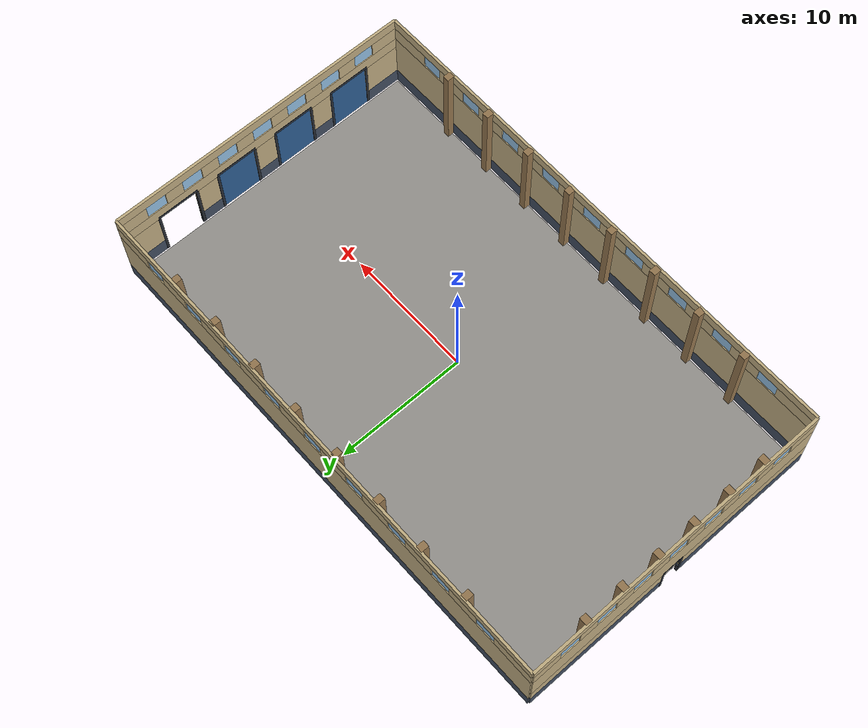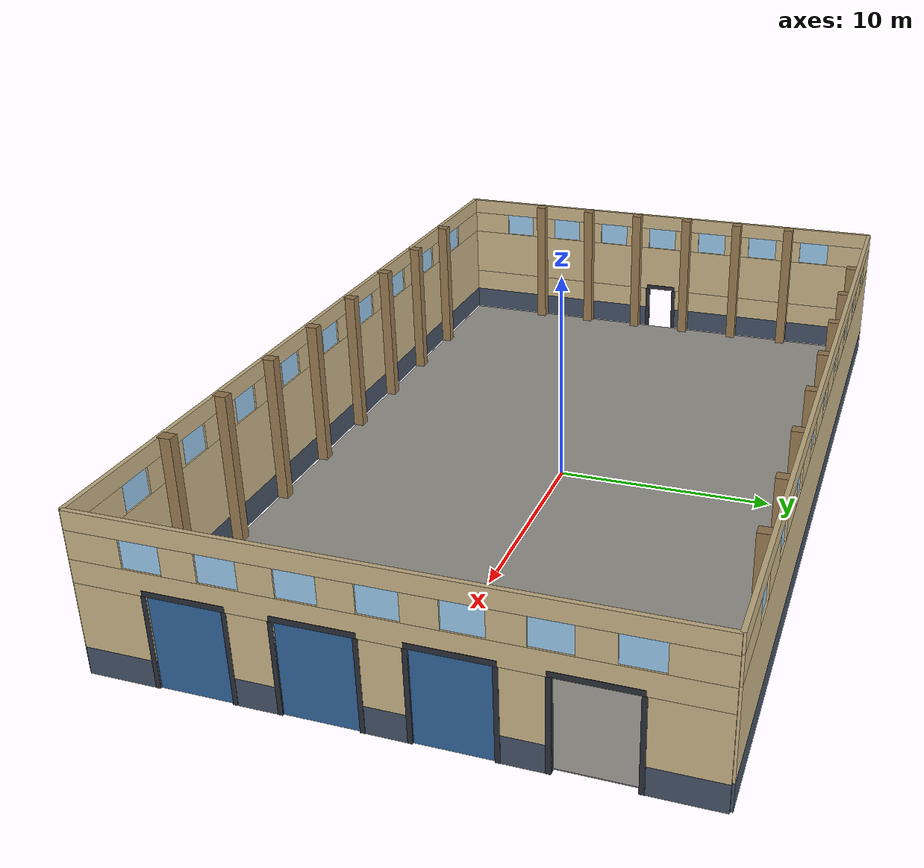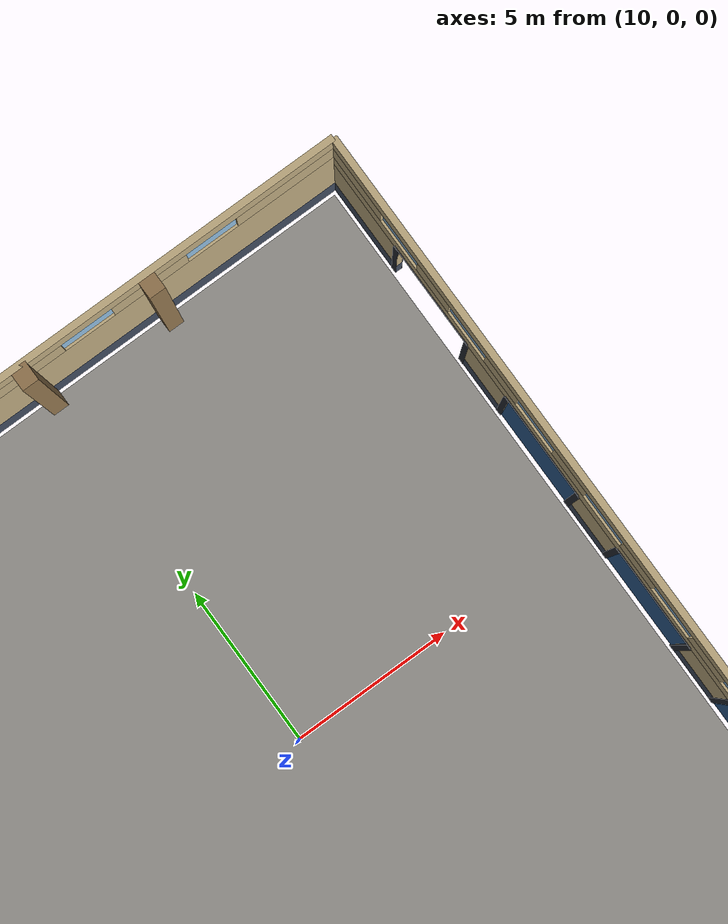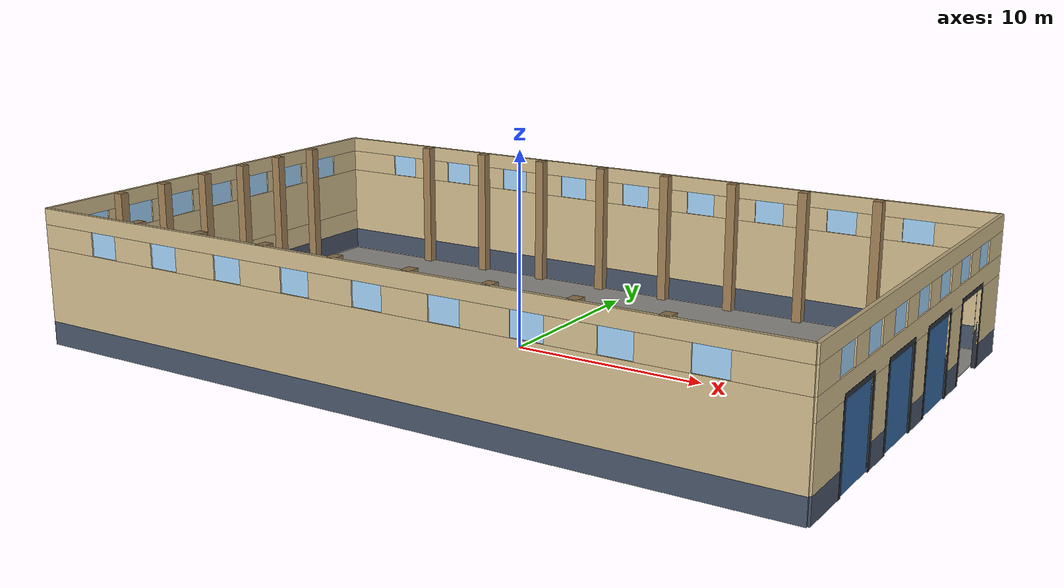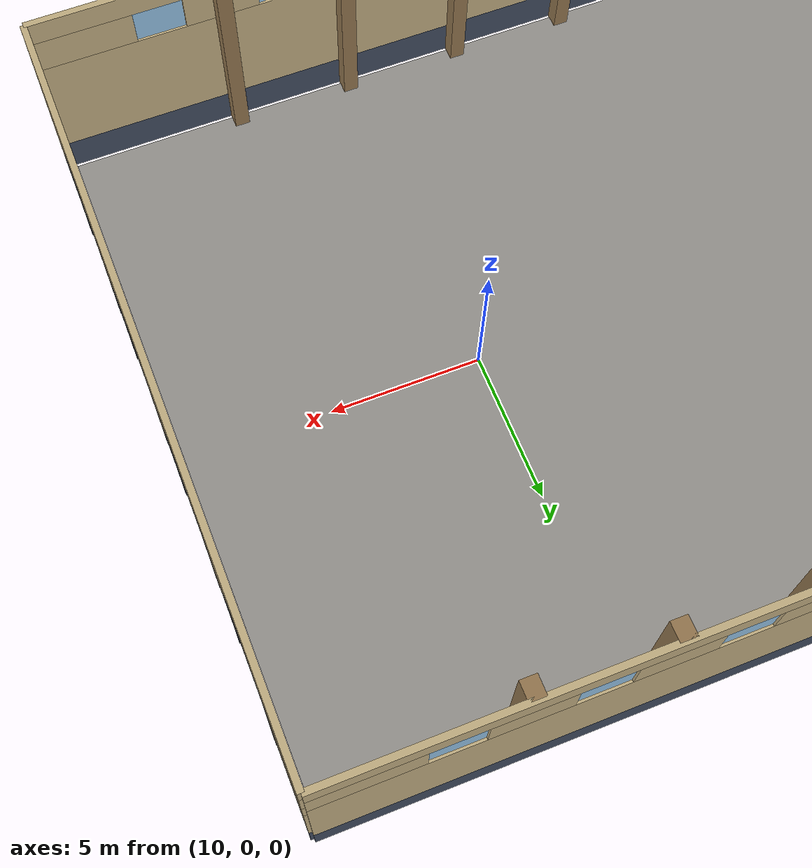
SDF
<sdf version="1.7">
 <world name="default">
  <model name="warehouse_shell">
   <static>1</static>
   <link name="wEbase0">
    <pose>20 -10.5 0.6 0 0 0</pose>
    <collision name="c"><geometry><box><size>0.2 3 1.2</size></box></geometry></collision>
    <visual name="v">
     <geometry><box><size>0.2 3 1.2</size></box></geometry>
     <material>
      <ambient>0.259 0.306 0.384 1</ambient>
      <diffuse>0.259 0.306 0.384 1</diffuse>
      <specular>0.1 0.1 0.1 1</specular>
     </material>
    </visual>
   </link>
   <link name="wEbase1">
    <pose>20 -5 0.6 0 0 0</pose>
    <collision name="c"><geometry><box><size>0.2 2 1.2</size></box></geometry></collision>
    <visual name="v">
     <geometry><box><size>0.2 2 1.2</size></box></geometry>
     <material>
      <ambient>0.259 0.306 0.384 1</ambient>
      <diffuse>0.259 0.306 0.384 1</diffuse>
      <specular>0.1 0.1 0.1 1</specular>
     </material>
    </visual>
   </link>
   <link name="wEbase2">
    <pose>20 0 0.6 0 0 0</pose>
    <collision name="c"><geometry><box><size>0.2 2 1.2</size></box></geometry></collision>
    <visual name="v">
     <geometry><box><size>0.2 2 1.2</size></box></geometry>
     <material>
      <ambient>0.259 0.306 0.384 1</ambient>
      <diffuse>0.259 0.306 0.384 1</diffuse>
      <specular>0.1 0.1 0.1 1</specular>
     </material>
    </visual>
   </link>
   <link name="wEbase3">
    <pose>20 5 0.6 0 0 0</pose>
    <collision name="c"><geometry><box><size>0.2 2 1.2</size></box></geometry></collision>
    <visual name="v">
     <geometry><box><size>0.2 2 1.2</size></box></geometry>
     <material>
      <ambient>0.259 0.306 0.384 1</ambient>
      <diffuse>0.259 0.306 0.384 1</diffuse>
      <specular>0.1 0.1 0.1 1</specular>
     </material>
    </visual>
   </link>
   <link name="wEbase4">
    <pose>20 10.5 0.6 0 0 0</pose>
    <collision name="c"><geometry><box><size>0.2 3 1.2</size></box></geometry></collision>
    <visual name="v">
     <geometry><box><size>0.2 3 1.2</size></box></geometry>
     <material>
      <ambient>0.259 0.306 0.384 1</ambient>
      <diffuse>0.259 0.306 0.384 1</diffuse>
      <specular>0.1 0.1 0.1 1</specular>
     </material>
    </visual>
   </link>
   <link name="wElo0">
    <pose>20 -10.5 2.6 0 0 0</pose>
    <collision name="c"><geometry><box><size>0.2 3 2.8</size></box></geometry></collision>
    <visual name="v">
     <geometry><box><size>0.2 3 2.8</size></box></geometry>
     <material>
      <ambient>0.769 0.690 0.518 1</ambient>
      <diffuse>0.769 0.690 0.518 1</diffuse>
      <specular>0.1 0.1 0.1 1</specular>
     </material>
    </visual>
   </link>
   <link name="wElo1">
    <pose>20 -5 2.6 0 0 0</pose>
    <collision name="c"><geometry><box><size>0.2 2 2.8</size></box></geometry></collision>
    <visual name="v">
     <geometry><box><size>0.2 2 2.8</size></box></geometry>
     <material>
      <ambient>0.769 0.690 0.518 1</ambient>
      <diffuse>0.769 0.690 0.518 1</diffuse>
      <specular>0.1 0.1 0.1 1</specular>
     </material>
    </visual>
   </link>
   <link name="wElo2">
    <pose>20 0 2.6 0 0 0</pose>
    <collision name="c"><geometry><box><size>0.2 2 2.8</size></box></geometry></collision>
    <visual name="v">
     <geometry><box><size>0.2 2 2.8</size></box></geometry>
     <material>
      <ambient>0.769 0.690 0.518 1</ambient>
      <diffuse>0.769 0.690 0.518 1</diffuse>
      <specular>0.1 0.1 0.1 1</specular>
     </material>
    </visual>
   </link>
   <link name="wElo3">
    <pose>20 5 2.6 0 0 0</pose>
    <collision name="c"><geometry><box><size>0.2 2 2.8</size></box></geometry></collision>
    <visual name="v">
     <geometry><box><size>0.2 2 2.8</size></box></geometry>
     <material>
      <ambient>0.769 0.690 0.518 1</ambient>
      <diffuse>0.769 0.690 0.518 1</diffuse>
      <specular>0.1 0.1 0.1 1</specular>
     </material>
    </visual>
   </link>
   <link name="wElo4">
    <pose>20 10.5 2.6 0 0 0</pose>
    <collision name="c"><geometry><box><size>0.2 3 2.8</size></box></geometry></collision>
    <visual name="v">
     <geometry><box><size>0.2 3 2.8</size></box></geometry>
     <material>
      <ambient>0.769 0.690 0.518 1</ambient>
      <diffuse>0.769 0.690 0.518 1</diffuse>
      <specular>0.1 0.1 0.1 1</specular>
     </material>
    </visual>
   </link>
   <link name="wEmid0">
    <pose>20 0 4.5 0 0 0</pose>
    <collision name="c"><geometry><box><size>0.2 24 1</size></box></geometry></collision>
    <visual name="v">
     <geometry><box><size>0.2 24 1</size></box></geometry>
     <material>
      <ambient>0.769 0.690 0.518 1</ambient>
      <diffuse>0.769 0.690 0.518 1</diffuse>
      <specular>0.1 0.1 0.1 1</specular>
     </material>
    </visual>
   </link>
   <link name="wEmul0">
    <pose>20 -10.9 5.6 0 0 0</pose>
    <collision name="c"><geometry><box><size>0.2 2.2 1.2</size></box></geometry></collision>
    <visual name="v">
     <geometry><box><size>0.2 2.2 1.2</size></box></geometry>
     <material>
      <ambient>0.769 0.690 0.518 1</ambient>
      <diffuse>0.769 0.690 0.518 1</diffuse>
      <specular>0.1 0.1 0.1 1</specular>
     </material>
    </visual>
   </link>
   <link name="wEmul1">
    <pose>20 -7.5 5.6 0 0 0</pose>
    <collision name="c"><geometry><box><size>0.2 1.4 1.2</size></box></geometry></collision>
    <visual name="v">
     <geometry><box><size>0.2 1.4 1.2</size></box></geometry>
     <material>
      <ambient>0.769 0.690 0.518 1</ambient>
      <diffuse>0.769 0.690 0.518 1</diffuse>
      <specular>0.1 0.1 0.1 1</specular>
     </material>
    </visual>
   </link>
   <link name="wEmul2">
    <pose>20 -4.5 5.6 0 0 0</pose>
    <collision name="c"><geometry><box><size>0.2 1.4 1.2</size></box></geometry></collision>
    <visual name="v">
     <geometry><box><size>0.2 1.4 1.2</size></box></geometry>
     <material>
      <ambient>0.769 0.690 0.518 1</ambient>
      <diffuse>0.769 0.690 0.518 1</diffuse>
      <specular>0.1 0.1 0.1 1</specular>
     </material>
    </visual>
   </link>
   <link name="wEmul3">
    <pose>20 -1.5 5.6 0 0 0</pose>
    <collision name="c"><geometry><box><size>0.2 1.4 1.2</size></box></geometry></collision>
    <visual name="v">
     <geometry><box><size>0.2 1.4 1.2</size></box></geometry>
     <material>
      <ambient>0.769 0.690 0.518 1</ambient>
      <diffuse>0.769 0.690 0.518 1</diffuse>
      <specular>0.1 0.1 0.1 1</specular>
     </material>
    </visual>
   </link>
   <link name="wEmul4">
    <pose>20 1.5 5.6 0 0 0</pose>
    <collision name="c"><geometry><box><size>0.2 1.4 1.2</size></box></geometry></collision>
    <visual name="v">
     <geometry><box><size>0.2 1.4 1.2</size></box></geometry>
     <material>
      <ambient>0.769 0.690 0.518 1</ambient>
      <diffuse>0.769 0.690 0.518 1</diffuse>
      <specular>0.1 0.1 0.1 1</specular>
     </material>
    </visual>
   </link>
   <link name="wEmul5">
    <pose>20 4.5 5.6 0 0 0</pose>
    <collision name="c"><geometry><box><size>0.2 1.4 1.2</size></box></geometry></collision>
    <visual name="v">
     <geometry><box><size>0.2 1.4 1.2</size></box></geometry>
     <material>
      <ambient>0.769 0.690 0.518 1</ambient>
      <diffuse>0.769 0.690 0.518 1</diffuse>
      <specular>0.1 0.1 0.1 1</specular>
     </material>
    </visual>
   </link>
   <link name="wEmul6">
    <pose>20 7.5 5.6 0 0 0</pose>
    <collision name="c"><geometry><box><size>0.2 1.4 1.2</size></box></geometry></collision>
    <visual name="v">
     <geometry><box><size>0.2 1.4 1.2</size></box></geometry>
     <material>
      <ambient>0.769 0.690 0.518 1</ambient>
      <diffuse>0.769 0.690 0.518 1</diffuse>
      <specular>0.1 0.1 0.1 1</specular>
     </material>
    </visual>
   </link>
   <link name="wEmul7">
    <pose>20 10.9 5.6 0 0 0</pose>
    <collision name="c"><geometry><box><size>0.2 2.2 1.2</size></box></geometry></collision>
    <visual name="v">
     <geometry><box><size>0.2 2.2 1.2</size></box></geometry>
     <material>
      <ambient>0.769 0.690 0.518 1</ambient>
      <diffuse>0.769 0.690 0.518 1</diffuse>
      <specular>0.1 0.1 0.1 1</specular>
     </material>
    </visual>
   </link>
   <link name="wEtop0">
    <pose>20 0 6.6 0 0 0</pose>
    <collision name="c"><geometry><box><size>0.2 24 0.8</size></box></geometry></collision>
    <visual name="v">
     <geometry><box><size>0.2 24 0.8</size></box></geometry>
     <material>
      <ambient>0.769 0.690 0.518 1</ambient>
      <diffuse>0.769 0.690 0.518 1</diffuse>
      <specular>0.1 0.1 0.1 1</specular>
     </material>
    </visual>
   </link>
   <link name="wEg-9">
    <pose>20 -9 5.6 0 0 0</pose>
    <collision name="c"><geometry><box><size>0.05 1.6 1.2</size></box></geometry></collision>
    <visual name="v">
     <geometry><box><size>0.05 1.6 1.2</size></box></geometry>
     <material>
      <ambient>0.588 0.769 0.910 1</ambient>
      <diffuse>0.588 0.769 0.910 1</diffuse>
      <specular>0.1 0.1 0.1 1</specular>
     </material>
    </visual>
   </link>
   <link name="wEg-6">
    <pose>20 -6 5.6 0 0 0</pose>
    <collision name="c"><geometry><box><size>0.05 1.6 1.2</size></box></geometry></collision>
    <visual name="v">
     <geometry><box><size>0.05 1.6 1.2</size></box></geometry>
     <material>
      <ambient>0.588 0.769 0.910 1</ambient>
      <diffuse>0.588 0.769 0.910 1</diffuse>
      <specular>0.1 0.1 0.1 1</specular>
     </material>
    </visual>
   </link>
   <link name="wEg-3">
    <pose>20 -3 5.6 0 0 0</pose>
    <collision name="c"><geometry><box><size>0.05 1.6 1.2</size></box></geometry></collision>
    <visual name="v">
     <geometry><box><size>0.05 1.6 1.2</size></box></geometry>
     <material>
      <ambient>0.588 0.769 0.910 1</ambient>
      <diffuse>0.588 0.769 0.910 1</diffuse>
      <specular>0.1 0.1 0.1 1</specular>
     </material>
    </visual>
   </link>
   <link name="wEg0">
    <pose>20 0 5.6 0 0 0</pose>
    <collision name="c"><geometry><box><size>0.05 1.6 1.2</size></box></geometry></collision>
    <visual name="v">
     <geometry><box><size>0.05 1.6 1.2</size></box></geometry>
     <material>
      <ambient>0.588 0.769 0.910 1</ambient>
      <diffuse>0.588 0.769 0.910 1</diffuse>
      <specular>0.1 0.1 0.1 1</specular>
     </material>
    </visual>
   </link>
   <link name="wEg3">
    <pose>20 3 5.6 0 0 0</pose>
    <collision name="c"><geometry><box><size>0.05 1.6 1.2</size></box></geometry></collision>
    <visual name="v">
     <geometry><box><size>0.05 1.6 1.2</size></box></geometry>
     <material>
      <ambient>0.588 0.769 0.910 1</ambient>
      <diffuse>0.588 0.769 0.910 1</diffuse>
      <specular>0.1 0.1 0.1 1</specular>
     </material>
    </visual>
   </link>
   <link name="wEg6">
    <pose>20 6 5.6 0 0 0</pose>
    <collision name="c"><geometry><box><size>0.05 1.6 1.2</size></box></geometry></collision>
    <visual name="v">
     <geometry><box><size>0.05 1.6 1.2</size></box></geometry>
     <material>
      <ambient>0.588 0.769 0.910 1</ambient>
      <diffuse>0.588 0.769 0.910 1</diffuse>
      <specular>0.1 0.1 0.1 1</specular>
     </material>
    </visual>
   </link>
   <link name="wEg9">
    <pose>20 9 5.6 0 0 0</pose>
    <collision name="c"><geometry><box><size>0.05 1.6 1.2</size></box></geometry></collision>
    <visual name="v">
     <geometry><box><size>0.05 1.6 1.2</size></box></geometry>
     <material>
      <ambient>0.588 0.769 0.910 1</ambient>
      <diffuse>0.588 0.769 0.910 1</diffuse>
      <specular>0.1 0.1 0.1 1</specular>
     </material>
    </visual>
   </link>
   <link name="dfE-8lt">
    <pose>20 -7.5 4.12 0 0 0</pose>
    <collision name="c"><geometry><box><size>0.22 3.3 0.24</size></box></geometry></collision>
    <visual name="v">
     <geometry><box><size>0.22 3.3 0.24</size></box></geometry>
     <material>
      <ambient>0.157 0.173 0.204 1</ambient>
      <diffuse>0.157 0.173 0.204 1</diffuse>
      <specular>0.1 0.1 0.1 1</specular>
     </material>
    </visual>
   </link>
   <link name="dfE-8j-1">
    <pose>20 -9.1 2 0 0 0</pose>
    <collision name="c"><geometry><box><size>0.22 0.2 4</size></box></geometry></collision>
    <visual name="v">
     <geometry><box><size>0.22 0.2 4</size></box></geometry>
     <material>
      <ambient>0.157 0.173 0.204 1</ambient>
      <diffuse>0.157 0.173 0.204 1</diffuse>
      <specular>0.1 0.1 0.1 1</specular>
     </material>
    </visual>
   </link>
   <link name="dfE-8j1">
    <pose>20 -5.9 2 0 0 0</pose>
    <collision name="c"><geometry><box><size>0.22 0.2 4</size></box></geometry></collision>
    <visual name="v">
     <geometry><box><size>0.22 0.2 4</size></box></geometry>
     <material>
      <ambient>0.157 0.173 0.204 1</ambient>
      <diffuse>0.157 0.173 0.204 1</diffuse>
      <specular>0.1 0.1 0.1 1</specular>
     </material>
    </visual>
   </link>
   <link name="doorE-8">
    <pose>19.98 -7.5 2 0 0 0</pose>
    <collision name="c"><geometry><box><size>0.1 3 4</size></box></geometry></collision>
    <visual name="v">
     <geometry><box><size>0.1 3 4</size></box></geometry>
     <material>
      <ambient>0.180 0.376 0.588 1</ambient>
      <diffuse>0.180 0.376 0.588 1</diffuse>
      <specular>0.1 0.1 0.1 1</specular>
     </material>
    </visual>
   </link>
   <link name="dfE-2lt">
    <pose>20 -2.5 4.12 0 0 0</pose>
    <collision name="c"><geometry><box><size>0.22 3.3 0.24</size></box></geometry></collision>
    <visual name="v">
     <geometry><box><size>0.22 3.3 0.24</size></box></geometry>
     <material>
      <ambient>0.157 0.173 0.204 1</ambient>
      <diffuse>0.157 0.173 0.204 1</diffuse>
      <specular>0.1 0.1 0.1 1</specular>
     </material>
    </visual>
   </link>
   <link name="dfE-2j-1">
    <pose>20 -4.1 2 0 0 0</pose>
    <collision name="c"><geometry><box><size>0.22 0.2 4</size></box></geometry></collision>
    <visual name="v">
     <geometry><box><size>0.22 0.2 4</size></box></geometry>
     <material>
      <ambient>0.157 0.173 0.204 1</ambient>
      <diffuse>0.157 0.173 0.204 1</diffuse>
      <specular>0.1 0.1 0.1 1</specular>
     </material>
    </visual>
   </link>
   <link name="dfE-2j1">
    <pose>20 -0.9 2 0 0 0</pose>
    <collision name="c"><geometry><box><size>0.22 0.2 4</size></box></geometry></collision>
    <visual name="v">
     <geometry><box><size>0.22 0.2 4</size></box></geometry>
     <material>
      <ambient>0.157 0.173 0.204 1</ambient>
      <diffuse>0.157 0.173 0.204 1</diffuse>
      <specular>0.1 0.1 0.1 1</specular>
     </material>
    </visual>
   </link>
   <link name="doorE-2">
    <pose>19.98 -2.5 2 0 0 0</pose>
    <collision name="c"><geometry><box><size>0.1 3 4</size></box></geometry></collision>
    <visual name="v">
     <geometry><box><size>0.1 3 4</size></box></geometry>
     <material>
      <ambient>0.180 0.376 0.588 1</ambient>
      <diffuse>0.180 0.376 0.588 1</diffuse>
      <specular>0.1 0.1 0.1 1</specular>
     </material>
    </visual>
   </link>
   <link name="dfE2lt">
    <pose>20 2.5 4.12 0 0 0</pose>
    <collision name="c"><geometry><box><size>0.22 3.3 0.24</size></box></geometry></collision>
    <visual name="v">
     <geometry><box><size>0.22 3.3 0.24</size></box></geometry>
     <material>
      <ambient>0.157 0.173 0.204 1</ambient>
      <diffuse>0.157 0.173 0.204 1</diffuse>
      <specular>0.1 0.1 0.1 1</specular>
     </material>
    </visual>
   </link>
   <link name="dfE2j-1">
    <pose>20 0.9 2 0 0 0</pose>
    <collision name="c"><geometry><box><size>0.22 0.2 4</size></box></geometry></collision>
    <visual name="v">
     <geometry><box><size>0.22 0.2 4</size></box></geometry>
     <material>
      <ambient>0.157 0.173 0.204 1</ambient>
      <diffuse>0.157 0.173 0.204 1</diffuse>
      <specular>0.1 0.1 0.1 1</specular>
     </material>
    </visual>
   </link>
   <link name="dfE2j1">
    <pose>20 4.1 2 0 0 0</pose>
    <collision name="c"><geometry><box><size>0.22 0.2 4</size></box></geometry></collision>
    <visual name="v">
     <geometry><box><size>0.22 0.2 4</size></box></geometry>
     <material>
      <ambient>0.157 0.173 0.204 1</ambient>
      <diffuse>0.157 0.173 0.204 1</diffuse>
      <specular>0.1 0.1 0.1 1</specular>
     </material>
    </visual>
   </link>
   <link name="doorE2">
    <pose>19.98 2.5 2 0 0 0</pose>
    <collision name="c"><geometry><box><size>0.1 3 4</size></box></geometry></collision>
    <visual name="v">
     <geometry><box><size>0.1 3 4</size></box></geometry>
     <material>
      <ambient>0.180 0.376 0.588 1</ambient>
      <diffuse>0.180 0.376 0.588 1</diffuse>
      <specular>0.1 0.1 0.1 1</specular>
     </material>
    </visual>
   </link>
   <link name="dfE8lt">
    <pose>20 7.5 4.12 0 0 0</pose>
    <collision name="c"><geometry><box><size>0.22 3.3 0.24</size></box></geometry></collision>
    <visual name="v">
     <geometry><box><size>0.22 3.3 0.24</size></box></geometry>
     <material>
      <ambient>0.157 0.173 0.204 1</ambient>
      <diffuse>0.157 0.173 0.204 1</diffuse>
      <specular>0.1 0.1 0.1 1</specular>
     </material>
    </visual>
   </link>
   <link name="dfE8j-1">
    <pose>20 5.9 2 0 0 0</pose>
    <collision name="c"><geometry><box><size>0.22 0.2 4</size></box></geometry></collision>
    <visual name="v">
     <geometry><box><size>0.22 0.2 4</size></box></geometry>
     <material>
      <ambient>0.157 0.173 0.204 1</ambient>
      <diffuse>0.157 0.173 0.204 1</diffuse>
      <specular>0.1 0.1 0.1 1</specular>
     </material>
    </visual>
   </link>
   <link name="dfE8j1">
    <pose>20 9.1 2 0 0 0</pose>
    <collision name="c"><geometry><box><size>0.22 0.2 4</size></box></geometry></collision>
    <visual name="v">
     <geometry><box><size>0.22 0.2 4</size></box></geometry>
     <material>
      <ambient>0.157 0.173 0.204 1</ambient>
      <diffuse>0.157 0.173 0.204 1</diffuse>
      <specular>0.1 0.1 0.1 1</specular>
     </material>
    </visual>
   </link>
   <link name="wWbase0">
    <pose>-20 -6.35 0.6 0 0 0</pose>
    <collision name="c"><geometry><box><size>0.2 11.3 1.2</size></box></geometry></collision>
    <visual name="v">
     <geometry><box><size>0.2 11.3 1.2</size></box></geometry>
     <material>
      <ambient>0.259 0.306 0.384 1</ambient>
      <diffuse>0.259 0.306 0.384 1</diffuse>
      <specular>0.1 0.1 0.1 1</specular>
     </material>
    </visual>
   </link>
   <link name="wWbase1">
    <pose>-20 6.35 0.6 0 0 0</pose>
    <collision name="c"><geometry><box><size>0.2 11.3 1.2</size></box></geometry></collision>
    <visual name="v">
     <geometry><box><size>0.2 11.3 1.2</size></box></geometry>
     <material>
      <ambient>0.259 0.306 0.384 1</ambient>
      <diffuse>0.259 0.306 0.384 1</diffuse>
      <specular>0.1 0.1 0.1 1</specular>
     </material>
    </visual>
   </link>
   <link name="wWlo0">
    <pose>-20 -6.35 1.8 0 0 0</pose>
    <collision name="c"><geometry><box><size>0.2 11.3 1.2</size></box></geometry></collision>
    <visual name="v">
     <geometry><box><size>0.2 11.3 1.2</size></box></geometry>
     <material>
      <ambient>0.769 0.690 0.518 1</ambient>
      <diffuse>0.769 0.690 0.518 1</diffuse>
      <specular>0.1 0.1 0.1 1</specular>
     </material>
    </visual>
   </link>
   <link name="wWlo1">
    <pose>-20 6.35 1.8 0 0 0</pose>
    <collision name="c"><geometry><box><size>0.2 11.3 1.2</size></box></geometry></collision>
    <visual name="v">
     <geometry><box><size>0.2 11.3 1.2</size></box></geometry>
     <material>
      <ambient>0.769 0.690 0.518 1</ambient>
      <diffuse>0.769 0.690 0.518 1</diffuse>
      <specular>0.1 0.1 0.1 1</specular>
     </material>
    </visual>
   </link>
   <link name="wWmid0">
    <pose>-20 0 3.7 0 0 0</pose>
    <collision name="c"><geometry><box><size>0.2 24 2.6</size></box></geometry></collision>
    <visual name="v">
     <geometry><box><size>0.2 24 2.6</size></box></geometry>
     <material>
      <ambient>0.769 0.690 0.518 1</ambient>
      <diffuse>0.769 0.690 0.518 1</diffuse>
      <specular>0.1 0.1 0.1 1</specular>
     </material>
    </visual>
   </link>
   <link name="wWmul0">
    <pose>-20 -10.9 5.6 0 0 0</pose>
    <collision name="c"><geometry><box><size>0.2 2.2 1.2</size></box></geometry></collision>
    <visual name="v">
     <geometry><box><size>0.2 2.2 1.2</size></box></geometry>
     <material>
      <ambient>0.769 0.690 0.518 1</ambient>
      <diffuse>0.769 0.690 0.518 1</diffuse>
      <specular>0.1 0.1 0.1 1</specular>
     </material>
    </visual>
   </link>
   <link name="wWmul1">
    <pose>-20 -7.5 5.6 0 0 0</pose>
    <collision name="c"><geometry><box><size>0.2 1.4 1.2</size></box></geometry></collision>
    <visual name="v">
     <geometry><box><size>0.2 1.4 1.2</size></box></geometry>
     <material>
      <ambient>0.769 0.690 0.518 1</ambient>
      <diffuse>0.769 0.690 0.518 1</diffuse>
      <specular>0.1 0.1 0.1 1</specular>
     </material>
    </visual>
   </link>
   <link name="wWmul2">
    <pose>-20 -4.5 5.6 0 0 0</pose>
    <collision name="c"><geometry><box><size>0.2 1.4 1.2</size></box></geometry></collision>
    <visual name="v">
     <geometry><box><size>0.2 1.4 1.2</size></box></geometry>
     <material>
      <ambient>0.769 0.690 0.518 1</ambient>
      <diffuse>0.769 0.690 0.518 1</diffuse>
      <specular>0.1 0.1 0.1 1</specular>
     </material>
    </visual>
   </link>
   <link name="wWmul3">
    <pose>-20 -1.5 5.6 0 0 0</pose>
    <collision name="c"><geometry><box><size>0.2 1.4 1.2</size></box></geometry></collision>
    <visual name="v">
     <geometry><box><size>0.2 1.4 1.2</size></box></geometry>
     <material>
      <ambient>0.769 0.690 0.518 1</ambient>
      <diffuse>0.769 0.690 0.518 1</diffuse>
      <specular>0.1 0.1 0.1 1</specular>
     </material>
    </visual>
   </link>
   <link name="wWmul4">
    <pose>-20 1.5 5.6 0 0 0</pose>
    <collision name="c"><geometry><box><size>0.2 1.4 1.2</size></box></geometry></collision>
    <visual name="v">
     <geometry><box><size>0.2 1.4 1.2</size></box></geometry>
     <material>
      <ambient>0.769 0.690 0.518 1</ambient>
      <diffuse>0.769 0.690 0.518 1</diffuse>
      <specular>0.1 0.1 0.1 1</specular>
     </material>
    </visual>
   </link>
   <link name="wWmul5">
    <pose>-20 4.5 5.6 0 0 0</pose>
    <collision name="c"><geometry><box><size>0.2 1.4 1.2</size></box></geometry></collision>
    <visual name="v">
     <geometry><box><size>0.2 1.4 1.2</size></box></geometry>
     <material>
      <ambient>0.769 0.690 0.518 1</ambient>
      <diffuse>0.769 0.690 0.518 1</diffuse>
      <specular>0.1 0.1 0.1 1</specular>
     </material>
    </visual>
   </link>
   <link name="wWmul6">
    <pose>-20 7.5 5.6 0 0 0</pose>
    <collision name="c"><geometry><box><size>0.2 1.4 1.2</size></box></geometry></collision>
    <visual name="v">
     <geometry><box><size>0.2 1.4 1.2</size></box></geometry>
     <material>
      <ambient>0.769 0.690 0.518 1</ambient>
      <diffuse>0.769 0.690 0.518 1</diffuse>
      <specular>0.1 0.1 0.1 1</specular>
     </material>
    </visual>
   </link>
   <link name="wWmul7">
    <pose>-20 10.9 5.6 0 0 0</pose>
    <collision name="c"><geometry><box><size>0.2 2.2 1.2</size></box></geometry></collision>
    <visual name="v">
     <geometry><box><size>0.2 2.2 1.2</size></box></geometry>
     <material>
      <ambient>0.769 0.690 0.518 1</ambient>
      <diffuse>0.769 0.690 0.518 1</diffuse>
      <specular>0.1 0.1 0.1 1</specular>
     </material>
    </visual>
   </link>
   <link name="wWtop0">
    <pose>-20 0 6.6 0 0 0</pose>
    <collision name="c"><geometry><box><size>0.2 24 0.8</size></box></geometry></collision>
    <visual name="v">
     <geometry><box><size>0.2 24 0.8</size></box></geometry>
     <material>
      <ambient>0.769 0.690 0.518 1</ambient>
      <diffuse>0.769 0.690 0.518 1</diffuse>
      <specular>0.1 0.1 0.1 1</specular>
     </material>
    </visual>
   </link>
   <link name="wWg-9">
    <pose>-20 -9 5.6 0 0 0</pose>
    <collision name="c"><geometry><box><size>0.05 1.6 1.2</size></box></geometry></collision>
    <visual name="v">
     <geometry><box><size>0.05 1.6 1.2</size></box></geometry>
     <material>
      <ambient>0.588 0.769 0.910 1</ambient>
      <diffuse>0.588 0.769 0.910 1</diffuse>
      <specular>0.1 0.1 0.1 1</specular>
     </material>
    </visual>
   </link>
   <link name="wWg-6">
    <pose>-20 -6 5.6 0 0 0</pose>
    <collision name="c"><geometry><box><size>0.05 1.6 1.2</size></box></geometry></collision>
    <visual name="v">
     <geometry><box><size>0.05 1.6 1.2</size></box></geometry>
     <material>
      <ambient>0.588 0.769 0.910 1</ambient>
      <diffuse>0.588 0.769 0.910 1</diffuse>
      <specular>0.1 0.1 0.1 1</specular>
     </material>
    </visual>
   </link>
   <link name="wWg-3">
    <pose>-20 -3 5.6 0 0 0</pose>
    <collision name="c"><geometry><box><size>0.05 1.6 1.2</size></box></geometry></collision>
    <visual name="v">
     <geometry><box><size>0.05 1.6 1.2</size></box></geometry>
     <material>
      <ambient>0.588 0.769 0.910 1</ambient>
      <diffuse>0.588 0.769 0.910 1</diffuse>
      <specular>0.1 0.1 0.1 1</specular>
     </material>
    </visual>
   </link>
   <link name="wWg0">
    <pose>-20 0 5.6 0 0 0</pose>
    <collision name="c"><geometry><box><size>0.05 1.6 1.2</size></box></geometry></collision>
    <visual name="v">
     <geometry><box><size>0.05 1.6 1.2</size></box></geometry>
     <material>
      <ambient>0.588 0.769 0.910 1</ambient>
      <diffuse>0.588 0.769 0.910 1</diffuse>
      <specular>0.1 0.1 0.1 1</specular>
     </material>
    </visual>
   </link>
   <link name="wWg3">
    <pose>-20 3 5.6 0 0 0</pose>
    <collision name="c"><geometry><box><size>0.05 1.6 1.2</size></box></geometry></collision>
    <visual name="v">
     <geometry><box><size>0.05 1.6 1.2</size></box></geometry>
     <material>
      <ambient>0.588 0.769 0.910 1</ambient>
      <diffuse>0.588 0.769 0.910 1</diffuse>
      <specular>0.1 0.1 0.1 1</specular>
     </material>
    </visual>
   </link>
   <link name="wWg6">
    <pose>-20 6 5.6 0 0 0</pose>
    <collision name="c"><geometry><box><size>0.05 1.6 1.2</size></box></geometry></collision>
    <visual name="v">
     <geometry><box><size>0.05 1.6 1.2</size></box></geometry>
     <material>
      <ambient>0.588 0.769 0.910 1</ambient>
      <diffuse>0.588 0.769 0.910 1</diffuse>
      <specular>0.1 0.1 0.1 1</specular>
     </material>
    </visual>
   </link>
   <link name="wWg9">
    <pose>-20 9 5.6 0 0 0</pose>
    <collision name="c"><geometry><box><size>0.05 1.6 1.2</size></box></geometry></collision>
    <visual name="v">
     <geometry><box><size>0.05 1.6 1.2</size></box></geometry>
     <material>
      <ambient>0.588 0.769 0.910 1</ambient>
      <diffuse>0.588 0.769 0.910 1</diffuse>
      <specular>0.1 0.1 0.1 1</specular>
     </material>
    </visual>
   </link>
   <link name="dfWlt">
    <pose>-20 0 2.52 0 0 0</pose>
    <collision name="c"><geometry><box><size>0.22 1.7 0.24</size></box></geometry></collision>
    <visual name="v">
     <geometry><box><size>0.22 1.7 0.24</size></box></geometry>
     <material>
      <ambient>0.157 0.173 0.204 1</ambient>
      <diffuse>0.157 0.173 0.204 1</diffuse>
      <specular>0.1 0.1 0.1 1</specular>
     </material>
    </visual>
   </link>
   <link name="dfWj-1">
    <pose>-20 -0.8 1.2 0 0 0</pose>
    <collision name="c"><geometry><box><size>0.22 0.2 2.4</size></box></geometry></collision>
    <visual name="v">
     <geometry><box><size>0.22 0.2 2.4</size></box></geometry>
     <material>
      <ambient>0.157 0.173 0.204 1</ambient>
      <diffuse>0.157 0.173 0.204 1</diffuse>
      <specular>0.1 0.1 0.1 1</specular>
     </material>
    </visual>
   </link>
   <link name="dfWj1">
    <pose>-20 0.8 1.2 0 0 0</pose>
    <collision name="c"><geometry><box><size>0.22 0.2 2.4</size></box></geometry></collision>
    <visual name="v">
     <geometry><box><size>0.22 0.2 2.4</size></box></geometry>
     <material>
      <ambient>0.157 0.173 0.204 1</ambient>
      <diffuse>0.157 0.173 0.204 1</diffuse>
      <specular>0.1 0.1 0.1 1</specular>
     </material>
    </visual>
   </link>
   <link name="wWpil-75">
    <pose>-19.7 -7.5 3.5 0 0 0</pose>
    <collision name="c"><geometry><box><size>0.6 0.5 7</size></box></geometry></collision>
    <visual name="v">
     <geometry><box><size>0.6 0.5 7</size></box></geometry>
     <material>
      <ambient>0.588 0.471 0.314 1</ambient>
      <diffuse>0.588 0.471 0.314 1</diffuse>
      <specular>0.1 0.1 0.1 1</specular>
     </material>
    </visual>
   </link>
   <link name="wWpil-45">
    <pose>-19.7 -4.5 3.5 0 0 0</pose>
    <collision name="c"><geometry><box><size>0.6 0.5 7</size></box></geometry></collision>
    <visual name="v">
     <geometry><box><size>0.6 0.5 7</size></box></geometry>
     <material>
      <ambient>0.588 0.471 0.314 1</ambient>
      <diffuse>0.588 0.471 0.314 1</diffuse>
      <specular>0.1 0.1 0.1 1</specular>
     </material>
    </visual>
   </link>
   <link name="wWpil-15">
    <pose>-19.7 -1.5 3.5 0 0 0</pose>
    <collision name="c"><geometry><box><size>0.6 0.5 7</size></box></geometry></collision>
    <visual name="v">
     <geometry><box><size>0.6 0.5 7</size></box></geometry>
     <material>
      <ambient>0.588 0.471 0.314 1</ambient>
      <diffuse>0.588 0.471 0.314 1</diffuse>
      <specular>0.1 0.1 0.1 1</specular>
     </material>
    </visual>
   </link>
   <link name="wWpil15">
    <pose>-19.7 1.5 3.5 0 0 0</pose>
    <collision name="c"><geometry><box><size>0.6 0.5 7</size></box></geometry></collision>
    <visual name="v">
     <geometry><box><size>0.6 0.5 7</size></box></geometry>
     <material>
      <ambient>0.588 0.471 0.314 1</ambient>
      <diffuse>0.588 0.471 0.314 1</diffuse>
      <specular>0.1 0.1 0.1 1</specular>
     </material>
    </visual>
   </link>
   <link name="wWpil45">
    <pose>-19.7 4.5 3.5 0 0 0</pose>
    <collision name="c"><geometry><box><size>0.6 0.5 7</size></box></geometry></collision>
    <visual name="v">
     <geometry><box><size>0.6 0.5 7</size></box></geometry>
     <material>
      <ambient>0.588 0.471 0.314 1</ambient>
      <diffuse>0.588 0.471 0.314 1</diffuse>
      <specular>0.1 0.1 0.1 1</specular>
     </material>
    </visual>
   </link>
   <link name="wWpil75">
    <pose>-19.7 7.5 3.5 0 0 0</pose>
    <collision name="c"><geometry><box><size>0.6 0.5 7</size></box></geometry></collision>
    <visual name="v">
     <geometry><box><size>0.6 0.5 7</size></box></geometry>
     <material>
      <ambient>0.588 0.471 0.314 1</ambient>
      <diffuse>0.588 0.471 0.314 1</diffuse>
      <specular>0.1 0.1 0.1 1</specular>
     </material>
    </visual>
   </link>
   <link name="wNbase0">
    <pose>0 12 0.6 0 0 0</pose>
    <collision name="c"><geometry><box><size>40 0.2 1.2</size></box></geometry></collision>
    <visual name="v">
     <geometry><box><size>40 0.2 1.2</size></box></geometry>
     <material>
      <ambient>0.259 0.306 0.384 1</ambient>
      <diffuse>0.259 0.306 0.384 1</diffuse>
      <specular>0.1 0.1 0.1 1</specular>
     </material>
    </visual>
   </link>
   <link name="wNsid0">
    <pose>0 12 3.1 0 0 0</pose>
    <collision name="c"><geometry><box><size>40 0.2 3.8</size></box></geometry></collision>
    <visual name="v">
     <geometry><box><size>40 0.2 3.8</size></box></geometry>
     <material>
      <ambient>0.769 0.690 0.518 1</ambient>
      <diffuse>0.769 0.690 0.518 1</diffuse>
      <specular>0.1 0.1 0.1 1</specular>
     </material>
    </visual>
   </link>
   <link name="wNmul0">
    <pose>-18.4 12 5.6 0 0 0</pose>
    <collision name="c"><geometry><box><size>3.2 0.2 1.2</size></box></geometry></collision>
    <visual name="v">
     <geometry><box><size>3.2 0.2 1.2</size></box></geometry>
     <material>
      <ambient>0.769 0.690 0.518 1</ambient>
      <diffuse>0.769 0.690 0.518 1</diffuse>
      <specular>0.1 0.1 0.1 1</specular>
     </material>
    </visual>
   </link>
   <link name="wNmul1">
    <pose>-14 12 5.6 0 0 0</pose>
    <collision name="c"><geometry><box><size>2.4 0.2 1.2</size></box></geometry></collision>
    <visual name="v">
     <geometry><box><size>2.4 0.2 1.2</size></box></geometry>
     <material>
      <ambient>0.769 0.690 0.518 1</ambient>
      <diffuse>0.769 0.690 0.518 1</diffuse>
      <specular>0.1 0.1 0.1 1</specular>
     </material>
    </visual>
   </link>
   <link name="wNmul2">
    <pose>-10 12 5.6 0 0 0</pose>
    <collision name="c"><geometry><box><size>2.4 0.2 1.2</size></box></geometry></collision>
    <visual name="v">
     <geometry><box><size>2.4 0.2 1.2</size></box></geometry>
     <material>
      <ambient>0.769 0.690 0.518 1</ambient>
      <diffuse>0.769 0.690 0.518 1</diffuse>
      <specular>0.1 0.1 0.1 1</specular>
     </material>
    </visual>
   </link>
   <link name="wNmul3">
    <pose>-6 12 5.6 0 0 0</pose>
    <collision name="c"><geometry><box><size>2.4 0.2 1.2</size></box></geometry></collision>
    <visual name="v">
     <geometry><box><size>2.4 0.2 1.2</size></box></geometry>
     <material>
      <ambient>0.769 0.690 0.518 1</ambient>
      <diffuse>0.769 0.690 0.518 1</diffuse>
      <specular>0.1 0.1 0.1 1</specular>
     </material>
    </visual>
   </link>
   <link name="wNmul4">
    <pose>-2 12 5.6 0 0 0</pose>
    <collision name="c"><geometry><box><size>2.4 0.2 1.2</size></box></geometry></collision>
    <visual name="v">
     <geometry><box><size>2.4 0.2 1.2</size></box></geometry>
     <material>
      <ambient>0.769 0.690 0.518 1</ambient>
      <diffuse>0.769 0.690 0.518 1</diffuse>
      <specular>0.1 0.1 0.1 1</specular>
     </material>
    </visual>
   </link>
   <link name="wNmul5">
    <pose>2 12 5.6 0 0 0</pose>
    <collision name="c"><geometry><box><size>2.4 0.2 1.2</size></box></geometry></collision>
    <visual name="v">
     <geometry><box><size>2.4 0.2 1.2</size></box></geometry>
     <material>
      <ambient>0.769 0.690 0.518 1</ambient>
      <diffuse>0.769 0.690 0.518 1</diffuse>
      <specular>0.1 0.1 0.1 1</specular>
     </material>
    </visual>
   </link>
   <link name="wNmul6">
    <pose>6 12 5.6 0 0 0</pose>
    <collision name="c"><geometry><box><size>2.4 0.2 1.2</size></box></geometry></collision>
    <visual name="v">
     <geometry><box><size>2.4 0.2 1.2</size></box></geometry>
     <material>
      <ambient>0.769 0.690 0.518 1</ambient>
      <diffuse>0.769 0.690 0.518 1</diffuse>
      <specular>0.1 0.1 0.1 1</specular>
     </material>
    </visual>
   </link>
   <link name="wNmul7">
    <pose>10 12 5.6 0 0 0</pose>
    <collision name="c"><geometry><box><size>2.4 0.2 1.2</size></box></geometry></collision>
    <visual name="v">
     <geometry><box><size>2.4 0.2 1.2</size></box></geometry>
     <material>
      <ambient>0.769 0.690 0.518 1</ambient>
      <diffuse>0.769 0.690 0.518 1</diffuse>
      <specular>0.1 0.1 0.1 1</specular>
     </material>
    </visual>
   </link>
   <link name="wNmul8">
    <pose>14 12 5.6 0 0 0</pose>
    <collision name="c"><geometry><box><size>2.4 0.2 1.2</size></box></geometry></collision>
    <visual name="v">
     <geometry><box><size>2.4 0.2 1.2</size></box></geometry>
     <material>
      <ambient>0.769 0.690 0.518 1</ambient>
      <diffuse>0.769 0.690 0.518 1</diffuse>
      <specular>0.1 0.1 0.1 1</specular>
     </material>
    </visual>
   </link>
   <link name="wNmul9">
    <pose>18.4 12 5.6 0 0 0</pose>
    <collision name="c"><geometry><box><size>3.2 0.2 1.2</size></box></geometry></collision>
    <visual name="v">
     <geometry><box><size>3.2 0.2 1.2</size></box></geometry>
     <material>
      <ambient>0.769 0.690 0.518 1</ambient>
      <diffuse>0.769 0.690 0.518 1</diffuse>
      <specular>0.1 0.1 0.1 1</specular>
     </material>
    </visual>
   </link>
   <link name="wNtop0">
    <pose>0 12 6.6 0 0 0</pose>
    <collision name="c"><geometry><box><size>40 0.2 0.8</size></box></geometry></collision>
    <visual name="v">
     <geometry><box><size>40 0.2 0.8</size></box></geometry>
     <material>
      <ambient>0.769 0.690 0.518 1</ambient>
      <diffuse>0.769 0.690 0.518 1</diffuse>
      <specular>0.1 0.1 0.1 1</specular>
     </material>
    </visual>
   </link>
   <link name="wNg-16">
    <pose>-16 12 5.6 0 0 0</pose>
    <collision name="c"><geometry><box><size>1.6 0.05 1.2</size></box></geometry></collision>
    <visual name="v">
     <geometry><box><size>1.6 0.05 1.2</size></box></geometry>
     <material>
      <ambient>0.588 0.769 0.910 1</ambient>
      <diffuse>0.588 0.769 0.910 1</diffuse>
      <specular>0.1 0.1 0.1 1</specular>
     </material>
    </visual>
   </link>
   <link name="wNg-12">
    <pose>-12 12 5.6 0 0 0</pose>
    <collision name="c"><geometry><box><size>1.6 0.05 1.2</size></box></geometry></collision>
    <visual name="v">
     <geometry><box><size>1.6 0.05 1.2</size></box></geometry>
     <material>
      <ambient>0.588 0.769 0.910 1</ambient>
      <diffuse>0.588 0.769 0.910 1</diffuse>
      <specular>0.1 0.1 0.1 1</specular>
     </material>
    </visual>
   </link>
   <link name="wNg-8">
    <pose>-8 12 5.6 0 0 0</pose>
    <collision name="c"><geometry><box><size>1.6 0.05 1.2</size></box></geometry></collision>
    <visual name="v">
     <geometry><box><size>1.6 0.05 1.2</size></box></geometry>
     <material>
      <ambient>0.588 0.769 0.910 1</ambient>
      <diffuse>0.588 0.769 0.910 1</diffuse>
      <specular>0.1 0.1 0.1 1</specular>
     </material>
    </visual>
   </link>
   <link name="wNg-4">
    <pose>-4 12 5.6 0 0 0</pose>
    <collision name="c"><geometry><box><size>1.6 0.05 1.2</size></box></geometry></collision>
    <visual name="v">
     <geometry><box><size>1.6 0.05 1.2</size></box></geometry>
     <material>
      <ambient>0.588 0.769 0.910 1</ambient>
      <diffuse>0.588 0.769 0.910 1</diffuse>
      <specular>0.1 0.1 0.1 1</specular>
     </material>
    </visual>
   </link>
   <link name="wNg0">
    <pose>0 12 5.6 0 0 0</pose>
    <collision name="c"><geometry><box><size>1.6 0.05 1.2</size></box></geometry></collision>
    <visual name="v">
     <geometry><box><size>1.6 0.05 1.2</size></box></geometry>
     <material>
      <ambient>0.588 0.769 0.910 1</ambient>
      <diffuse>0.588 0.769 0.910 1</diffuse>
      <specular>0.1 0.1 0.1 1</specular>
     </material>
    </visual>
   </link>
   <link name="wNg4">
    <pose>4 12 5.6 0 0 0</pose>
    <collision name="c"><geometry><box><size>1.6 0.05 1.2</size></box></geometry></collision>
    <visual name="v">
     <geometry><box><size>1.6 0.05 1.2</size></box></geometry>
     <material>
      <ambient>0.588 0.769 0.910 1</ambient>
      <diffuse>0.588 0.769 0.910 1</diffuse>
      <specular>0.1 0.1 0.1 1</specular>
     </material>
    </visual>
   </link>
   <link name="wNg8">
    <pose>8 12 5.6 0 0 0</pose>
    <collision name="c"><geometry><box><size>1.6 0.05 1.2</size></box></geometry></collision>
    <visual name="v">
     <geometry><box><size>1.6 0.05 1.2</size></box></geometry>
     <material>
      <ambient>0.588 0.769 0.910 1</ambient>
      <diffuse>0.588 0.769 0.910 1</diffuse>
      <specular>0.1 0.1 0.1 1</specular>
     </material>
    </visual>
   </link>
   <link name="wNg12">
    <pose>12 12 5.6 0 0 0</pose>
    <collision name="c"><geometry><box><size>1.6 0.05 1.2</size></box></geometry></collision>
    <visual name="v">
     <geometry><box><size>1.6 0.05 1.2</size></box></geometry>
     <material>
      <ambient>0.588 0.769 0.910 1</ambient>
      <diffuse>0.588 0.769 0.910 1</diffuse>
      <specular>0.1 0.1 0.1 1</specular>
     </material>
    </visual>
   </link>
   <link name="wNg16">
    <pose>16 12 5.6 0 0 0</pose>
    <collision name="c"><geometry><box><size>1.6 0.05 1.2</size></box></geometry></collision>
    <visual name="v">
     <geometry><box><size>1.6 0.05 1.2</size></box></geometry>
     <material>
      <ambient>0.588 0.769 0.910 1</ambient>
      <diffuse>0.588 0.769 0.910 1</diffuse>
      <specular>0.1 0.1 0.1 1</specular>
     </material>
    </visual>
   </link>
   <link name="wNpil-14">
    <pose>-14 11.7 3.5 0 0 0</pose>
    <collision name="c"><geometry><box><size>0.5 0.6 7</size></box></geometry></collision>
    <visual name="v">
     <geometry><box><size>0.5 0.6 7</size></box></geometry>
     <material>
      <ambient>0.588 0.471 0.314 1</ambient>
      <diffuse>0.588 0.471 0.314 1</diffuse>
      <specular>0.1 0.1 0.1 1</specular>
     </material>
    </visual>
   </link>
   <link name="wNpil-10">
    <pose>-10 11.7 3.5 0 0 0</pose>
    <collision name="c"><geometry><box><size>0.5 0.6 7</size></box></geometry></collision>
    <visual name="v">
     <geometry><box><size>0.5 0.6 7</size></box></geometry>
     <material>
      <ambient>0.588 0.471 0.314 1</ambient>
      <diffuse>0.588 0.471 0.314 1</diffuse>
      <specular>0.1 0.1 0.1 1</specular>
     </material>
    </visual>
   </link>
   <link name="wNpil-6">
    <pose>-6 11.7 3.5 0 0 0</pose>
    <collision name="c"><geometry><box><size>0.5 0.6 7</size></box></geometry></collision>
    <visual name="v">
     <geometry><box><size>0.5 0.6 7</size></box></geometry>
     <material>
      <ambient>0.588 0.471 0.314 1</ambient>
      <diffuse>0.588 0.471 0.314 1</diffuse>
      <specular>0.1 0.1 0.1 1</specular>
     </material>
    </visual>
   </link>
   <link name="wNpil-2">
    <pose>-2 11.7 3.5 0 0 0</pose>
    <collision name="c"><geometry><box><size>0.5 0.6 7</size></box></geometry></collision>
    <visual name="v">
     <geometry><box><size>0.5 0.6 7</size></box></geometry>
     <material>
      <ambient>0.588 0.471 0.314 1</ambient>
      <diffuse>0.588 0.471 0.314 1</diffuse>
      <specular>0.1 0.1 0.1 1</specular>
     </material>
    </visual>
   </link>
   <link name="wNpil2">
    <pose>2 11.7 3.5 0 0 0</pose>
    <collision name="c"><geometry><box><size>0.5 0.6 7</size></box></geometry></collision>
    <visual name="v">
     <geometry><box><size>0.5 0.6 7</size></box></geometry>
     <material>
      <ambient>0.588 0.471 0.314 1</ambient>
      <diffuse>0.588 0.471 0.314 1</diffuse>
      <specular>0.1 0.1 0.1 1</specular>
     </material>
    </visual>
   </link>
   <link name="wNpil6">
    <pose>6 11.7 3.5 0 0 0</pose>
    <collision name="c"><geometry><box><size>0.5 0.6 7</size></box></geometry></collision>
    <visual name="v">
     <geometry><box><size>0.5 0.6 7</size></box></geometry>
     <material>
      <ambient>0.588 0.471 0.314 1</ambient>
      <diffuse>0.588 0.471 0.314 1</diffuse>
      <specular>0.1 0.1 0.1 1</specular>
     </material>
    </visual>
   </link>
   <link name="wNpil10">
    <pose>10 11.7 3.5 0 0 0</pose>
    <collision name="c"><geometry><box><size>0.5 0.6 7</size></box></geometry></collision>
    <visual name="v">
     <geometry><box><size>0.5 0.6 7</size></box></geometry>
     <material>
      <ambient>0.588 0.471 0.314 1</ambient>
      <diffuse>0.588 0.471 0.314 1</diffuse>
      <specular>0.1 0.1 0.1 1</specular>
     </material>
    </visual>
   </link>
   <link name="wNpil14">
    <pose>14 11.7 3.5 0 0 0</pose>
    <collision name="c"><geometry><box><size>0.5 0.6 7</size></box></geometry></collision>
    <visual name="v">
     <geometry><box><size>0.5 0.6 7</size></box></geometry>
     <material>
      <ambient>0.588 0.471 0.314 1</ambient>
      <diffuse>0.588 0.471 0.314 1</diffuse>
      <specular>0.1 0.1 0.1 1</specular>
     </material>
    </visual>
   </link>
   <link name="wSbase0">
    <pose>0 -12 0.6 0 0 0</pose>
    <collision name="c"><geometry><box><size>40 0.2 1.2</size></box></geometry></collision>
    <visual name="v">
     <geometry><box><size>40 0.2 1.2</size></box></geometry>
     <material>
      <ambient>0.259 0.306 0.384 1</ambient>
      <diffuse>0.259 0.306 0.384 1</diffuse>
      <specular>0.1 0.1 0.1 1</specular>
     </material>
    </visual>
   </link>
   <link name="wSsid0">
    <pose>0 -12 3.1 0 0 0</pose>
    <collision name="c"><geometry><box><size>40 0.2 3.8</size></box></geometry></collision>
    <visual name="v">
     <geometry><box><size>40 0.2 3.8</size></box></geometry>
     <material>
      <ambient>0.769 0.690 0.518 1</ambient>
      <diffuse>0.769 0.690 0.518 1</diffuse>
      <specular>0.1 0.1 0.1 1</specular>
     </material>
    </visual>
   </link>
   <link name="wSmul0">
    <pose>-18.4 -12 5.6 0 0 0</pose>
    <collision name="c"><geometry><box><size>3.2 0.2 1.2</size></box></geometry></collision>
    <visual name="v">
     <geometry><box><size>3.2 0.2 1.2</size></box></geometry>
     <material>
      <ambient>0.769 0.690 0.518 1</ambient>
      <diffuse>0.769 0.690 0.518 1</diffuse>
      <specular>0.1 0.1 0.1 1</specular>
     </material>
    </visual>
   </link>
   <link name="wSmul1">
    <pose>-14 -12 5.6 0 0 0</pose>
    <collision name="c"><geometry><box><size>2.4 0.2 1.2</size></box></geometry></collision>
    <visual name="v">
     <geometry><box><size>2.4 0.2 1.2</size></box></geometry>
     <material>
      <ambient>0.769 0.690 0.518 1</ambient>
      <diffuse>0.769 0.690 0.518 1</diffuse>
      <specular>0.1 0.1 0.1 1</specular>
     </material>
    </visual>
   </link>
   <link name="wSmul2">
    <pose>-10 -12 5.6 0 0 0</pose>
    <collision name="c"><geometry><box><size>2.4 0.2 1.2</size></box></geometry></collision>
    <visual name="v">
     <geometry><box><size>2.4 0.2 1.2</size></box></geometry>
     <material>
      <ambient>0.769 0.690 0.518 1</ambient>
      <diffuse>0.769 0.690 0.518 1</diffuse>
      <specular>0.1 0.1 0.1 1</specular>
     </material>
    </visual>
   </link>
   <link name="wSmul3">
    <pose>-6 -12 5.6 0 0 0</pose>
    <collision name="c"><geometry><box><size>2.4 0.2 1.2</size></box></geometry></collision>
    <visual name="v">
     <geometry><box><size>2.4 0.2 1.2</size></box></geometry>
     <material>
      <ambient>0.769 0.690 0.518 1</ambient>
      <diffuse>0.769 0.690 0.518 1</diffuse>
      <specular>0.1 0.1 0.1 1</specular>
     </material>
    </visual>
   </link>
   <link name="wSmul4">
    <pose>-2 -12 5.6 0 0 0</pose>
    <collision name="c"><geometry><box><size>2.4 0.2 1.2</size></box></geometry></collision>
    <visual name="v">
     <geometry><box><size>2.4 0.2 1.2</size></box></geometry>
     <material>
      <ambient>0.769 0.690 0.518 1</ambient>
      <diffuse>0.769 0.690 0.518 1</diffuse>
      <specular>0.1 0.1 0.1 1</specular>
     </material>
    </visual>
   </link>
   <link name="wSmul5">
    <pose>2 -12 5.6 0 0 0</pose>
    <collision name="c"><geometry><box><size>2.4 0.2 1.2</size></box></geometry></collision>
    <visual name="v">
     <geometry><box><size>2.4 0.2 1.2</size></box></geometry>
     <material>
      <ambient>0.769 0.690 0.518 1</ambient>
      <diffuse>0.769 0.690 0.518 1</diffuse>
      <specular>0.1 0.1 0.1 1</specular>
     </material>
    </visual>
   </link>
   <link name="wSmul6">
    <pose>6 -12 5.6 0 0 0</pose>
    <collision name="c"><geometry><box><size>2.4 0.2 1.2</size></box></geometry></collision>
    <visual name="v">
     <geometry><box><size>2.4 0.2 1.2</size></box></geometry>
     <material>
      <ambient>0.769 0.690 0.518 1</ambient>
      <diffuse>0.769 0.690 0.518 1</diffuse>
      <specular>0.1 0.1 0.1 1</specular>
     </material>
    </visual>
   </link>
   <link name="wSmul7">
    <pose>10 -12 5.6 0 0 0</pose>
    <collision name="c"><geometry><box><size>2.4 0.2 1.2</size></box></geometry></collision>
    <visual name="v">
     <geometry><box><size>2.4 0.2 1.2</size></box></geometry>
     <material>
      <ambient>0.769 0.690 0.518 1</ambient>
      <diffuse>0.769 0.690 0.518 1</diffuse>
      <specular>0.1 0.1 0.1 1</specular>
     </material>
    </visual>
   </link>
   <link name="wSmul8">
    <pose>14 -12 5.6 0 0 0</pose>
    <collision name="c"><geometry><box><size>2.4 0.2 1.2</size></box></geometry></collision>
    <visual name="v">
     <geometry><box><size>2.4 0.2 1.2</size></box></geometry>
     <material>
      <ambient>0.769 0.690 0.518 1</ambient>
      <diffuse>0.769 0.690 0.518 1</diffuse>
      <specular>0.1 0.1 0.1 1</specular>
     </material>
    </visual>
   </link>
   <link name="wSmul9">
    <pose>18.4 -12 5.6 0 0 0</pose>
    <collision name="c"><geometry><box><size>3.2 0.2 1.2</size></box></geometry></collision>
    <visual name="v">
     <geometry><box><size>3.2 0.2 1.2</size></box></geometry>
     <material>
      <ambient>0.769 0.690 0.518 1</ambient>
      <diffuse>0.769 0.690 0.518 1</diffuse>
      <specular>0.1 0.1 0.1 1</specular>
     </material>
    </visual>
   </link>
   <link name="wStop0">
    <pose>0 -12 6.6 0 0 0</pose>
    <collision name="c"><geometry><box><size>40 0.2 0.8</size></box></geometry></collision>
    <visual name="v">
     <geometry><box><size>40 0.2 0.8</size></box></geometry>
     <material>
      <ambient>0.769 0.690 0.518 1</ambient>
      <diffuse>0.769 0.690 0.518 1</diffuse>
      <specular>0.1 0.1 0.1 1</specular>
     </material>
    </visual>
   </link>
   <link name="wSg-16">
    <pose>-16 -12 5.6 0 0 0</pose>
    <collision name="c"><geometry><box><size>1.6 0.05 1.2</size></box></geometry></collision>
    <visual name="v">
     <geometry><box><size>1.6 0.05 1.2</size></box></geometry>
     <material>
      <ambient>0.588 0.769 0.910 1</ambient>
      <diffuse>0.588 0.769 0.910 1</diffuse>
      <specular>0.1 0.1 0.1 1</specular>
     </material>
    </visual>
   </link>
   <link name="wSg-12">
    <pose>-12 -12 5.6 0 0 0</pose>
    <collision name="c"><geometry><box><size>1.6 0.05 1.2</size></box></geometry></collision>
    <visual name="v">
     <geometry><box><size>1.6 0.05 1.2</size></box></geometry>
     <material>
      <ambient>0.588 0.769 0.910 1</ambient>
      <diffuse>0.588 0.769 0.910 1</diffuse>
      <specular>0.1 0.1 0.1 1</specular>
     </material>
    </visual>
   </link>
   <link name="wSg-8">
    <pose>-8 -12 5.6 0 0 0</pose>
    <collision name="c"><geometry><box><size>1.6 0.05 1.2</size></box></geometry></collision>
    <visual name="v">
     <geometry><box><size>1.6 0.05 1.2</size></box></geometry>
     <material>
      <ambient>0.588 0.769 0.910 1</ambient>
      <diffuse>0.588 0.769 0.910 1</diffuse>
      <specular>0.1 0.1 0.1 1</specular>
     </material>
    </visual>
   </link>
   <link name="wSg-4">
    <pose>-4 -12 5.6 0 0 0</pose>
    <collision name="c"><geometry><box><size>1.6 0.05 1.2</size></box></geometry></collision>
    <visual name="v">
     <geometry><box><size>1.6 0.05 1.2</size></box></geometry>
     <material>
      <ambient>0.588 0.769 0.910 1</ambient>
      <diffuse>0.588 0.769 0.910 1</diffuse>
      <specular>0.1 0.1 0.1 1</specular>
     </material>
    </visual>
   </link>
   <link name="wSg0">
    <pose>0 -12 5.6 0 0 0</pose>
    <collision name="c"><geometry><box><size>1.6 0.05 1.2</size></box></geometry></collision>
    <visual name="v">
     <geometry><box><size>1.6 0.05 1.2</size></box></geometry>
     <material>
      <ambient>0.588 0.769 0.910 1</ambient>
      <diffuse>0.588 0.769 0.910 1</diffuse>
      <specular>0.1 0.1 0.1 1</specular>
     </material>
    </visual>
   </link>
   <link name="wSg4">
    <pose>4 -12 5.6 0 0 0</pose>
    <collision name="c"><geometry><box><size>1.6 0.05 1.2</size></box></geometry></collision>
    <visual name="v">
     <geometry><box><size>1.6 0.05 1.2</size></box></geometry>
     <material>
      <ambient>0.588 0.769 0.910 1</ambient>
      <diffuse>0.588 0.769 0.910 1</diffuse>
      <specular>0.1 0.1 0.1 1</specular>
     </material>
    </visual>
   </link>
   <link name="wSg8">
    <pose>8 -12 5.6 0 0 0</pose>
    <collision name="c"><geometry><box><size>1.6 0.05 1.2</size></box></geometry></collision>
    <visual name="v">
     <geometry><box><size>1.6 0.05 1.2</size></box></geometry>
     <material>
      <ambient>0.588 0.769 0.910 1</ambient>
      <diffuse>0.588 0.769 0.910 1</diffuse>
      <specular>0.1 0.1 0.1 1</specular>
     </material>
    </visual>
   </link>
   <link name="wSg12">
    <pose>12 -12 5.6 0 0 0</pose>
    <collision name="c"><geometry><box><size>1.6 0.05 1.2</size></box></geometry></collision>
    <visual name="v">
     <geometry><box><size>1.6 0.05 1.2</size></box></geometry>
     <material>
      <ambient>0.588 0.769 0.910 1</ambient>
      <diffuse>0.588 0.769 0.910 1</diffuse>
      <specular>0.1 0.1 0.1 1</specular>
     </material>
    </visual>
   </link>
   <link name="wSg16">
    <pose>16 -12 5.6 0 0 0</pose>
    <collision name="c"><geometry><box><size>1.6 0.05 1.2</size></box></geometry></collision>
    <visual name="v">
     <geometry><box><size>1.6 0.05 1.2</size></box></geometry>
     <material>
      <ambient>0.588 0.769 0.910 1</ambient>
      <diffuse>0.588 0.769 0.910 1</diffuse>
      <specular>0.1 0.1 0.1 1</specular>
     </material>
    </visual>
   </link>
   <link name="wSpil-14">
    <pose>-14 -11.7 3.5 0 0 0</pose>
    <collision name="c"><geometry><box><size>0.5 0.6 7</size></box></geometry></collision>
    <visual name="v">
     <geometry><box><size>0.5 0.6 7</size></box></geometry>
     <material>
      <ambient>0.588 0.471 0.314 1</ambient>
      <diffuse>0.588 0.471 0.314 1</diffuse>
      <specular>0.1 0.1 0.1 1</specular>
     </material>
    </visual>
   </link>
   <link name="wSpil-10">
    <pose>-10 -11.7 3.5 0 0 0</pose>
    <collision name="c"><geometry><box><size>0.5 0.6 7</size></box></geometry></collision>
    <visual name="v">
     <geometry><box><size>0.5 0.6 7</size></box></geometry>
     <material>
      <ambient>0.588 0.471 0.314 1</ambient>
      <diffuse>0.588 0.471 0.314 1</diffuse>
      <specular>0.1 0.1 0.1 1</specular>
     </material>
    </visual>
   </link>
   <link name="wSpil-6">
    <pose>-6 -11.7 3.5 0 0 0</pose>
    <collision name="c"><geometry><box><size>0.5 0.6 7</size></box></geometry></collision>
    <visual name="v">
     <geometry><box><size>0.5 0.6 7</size></box></geometry>
     <material>
      <ambient>0.588 0.471 0.314 1</ambient>
      <diffuse>0.588 0.471 0.314 1</diffuse>
      <specular>0.1 0.1 0.1 1</specular>
     </material>
    </visual>
   </link>
   <link name="wSpil-2">
    <pose>-2 -11.7 3.5 0 0 0</pose>
    <collision name="c"><geometry><box><size>0.5 0.6 7</size></box></geometry></collision>
    <visual name="v">
     <geometry><box><size>0.5 0.6 7</size></box></geometry>
     <material>
      <ambient>0.588 0.471 0.314 1</ambient>
      <diffuse>0.588 0.471 0.314 1</diffuse>
      <specular>0.1 0.1 0.1 1</specular>
     </material>
    </visual>
   </link>
   <link name="wSpil2">
    <pose>2 -11.7 3.5 0 0 0</pose>
    <collision name="c"><geometry><box><size>0.5 0.6 7</size></box></geometry></collision>
    <visual name="v">
     <geometry><box><size>0.5 0.6 7</size></box></geometry>
     <material>
      <ambient>0.588 0.471 0.314 1</ambient>
      <diffuse>0.588 0.471 0.314 1</diffuse>
      <specular>0.1 0.1 0.1 1</specular>
     </material>
    </visual>
   </link>
   <link name="wSpil6">
    <pose>6 -11.7 3.5 0 0 0</pose>
    <collision name="c"><geometry><box><size>0.5 0.6 7</size></box></geometry></collision>
    <visual name="v">
     <geometry><box><size>0.5 0.6 7</size></box></geometry>
     <material>
      <ambient>0.588 0.471 0.314 1</ambient>
      <diffuse>0.588 0.471 0.314 1</diffuse>
      <specular>0.1 0.1 0.1 1</specular>
     </material>
    </visual>
   </link>
   <link name="wSpil10">
    <pose>10 -11.7 3.5 0 0 0</pose>
    <collision name="c"><geometry><box><size>0.5 0.6 7</size></box></geometry></collision>
    <visual name="v">
     <geometry><box><size>0.5 0.6 7</size></box></geometry>
     <material>
      <ambient>0.588 0.471 0.314 1</ambient>
      <diffuse>0.588 0.471 0.314 1</diffuse>
      <specular>0.1 0.1 0.1 1</specular>
     </material>
    </visual>
   </link>
   <link name="wSpil14">
    <pose>14 -11.7 3.5 0 0 0</pose>
    <collision name="c"><geometry><box><size>0.5 0.6 7</size></box></geometry></collision>
    <visual name="v">
     <geometry><box><size>0.5 0.6 7</size></box></geometry>
     <material>
      <ambient>0.588 0.471 0.314 1</ambient>
      <diffuse>0.588 0.471 0.314 1</diffuse>
      <specular>0.1 0.1 0.1 1</specular>
     </material>
    </visual>
   </link>
   <link name="floor">
    <collision name="c"><geometry><box><size>39.6 23.6 0.04</size></box></geometry></collision>
    <visual name="v">
     <geometry><box><size>39.6 23.6 0.04</size></box></geometry>
     <material>
      <ambient>0.588 0.580 0.557 1</ambient>
      <diffuse>0.588 0.580 0.557 1</diffuse>
      <specular>0.1 0.1 0.1 1</specular>
     </material>
    </visual>
   </link>
  </model>
 </world>
</sdf>
